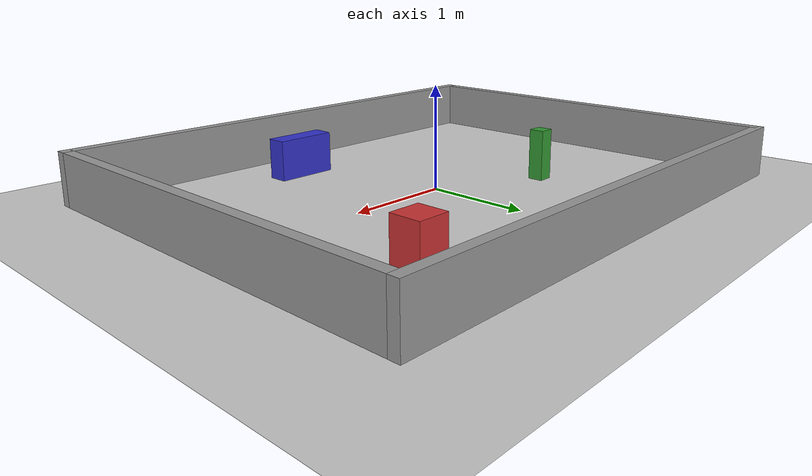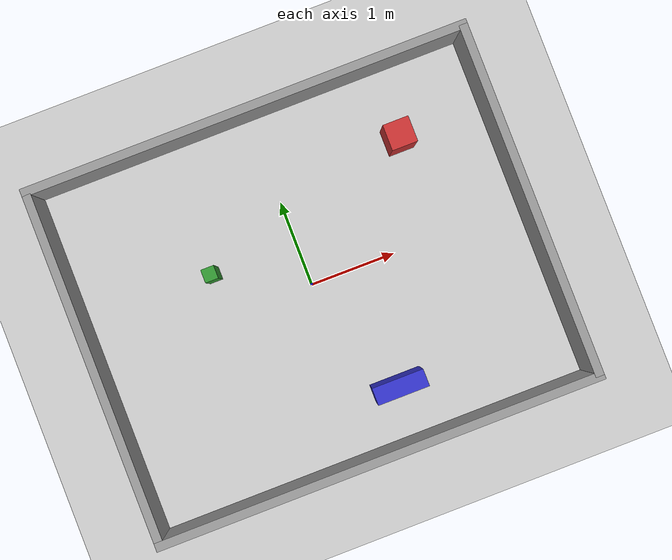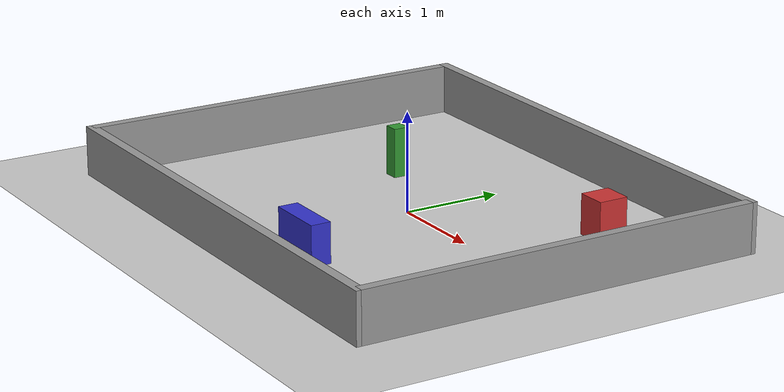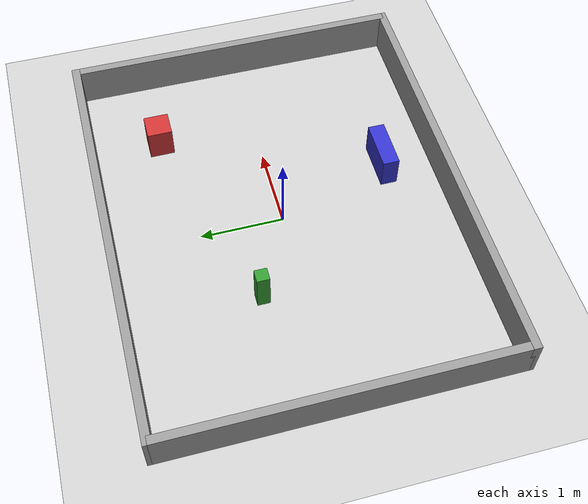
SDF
<?xml version="1.0"?>
<sdf version="1.7">
  <world name="esibot_world">

    <!-- ── Physics ── -->
    <physics name="default_physics" default="true" type="ode">
      <max_step_size>0.001</max_step_size>
      <real_time_factor>1.0</real_time_factor>
      <real_time_update_rate>1000</real_time_update_rate>
    </physics>

    <!-- ── Lighting ── -->
    <light name="sun" type="directional">
      <cast_shadows>true</cast_shadows>
      <pose>0 0 10 0 0 0</pose>
      <diffuse>0.8 0.8 0.8 1</diffuse>
      <specular>0.2 0.2 0.2 1</specular>
      <direction>-0.5 0.1 -0.9</direction>
    </light>

    <!-- ── Ground plane ── -->
    <model name="ground_plane">
      <static>true</static>
      <link name="link">
        <collision name="collision">
          <geometry>
            <plane><normal>0 0 1</normal><size>20 20</size></plane>
          </geometry>
          <surface>
            <friction><ode><mu>1.0</mu><mu2>1.0</mu2></ode></friction>
          </surface>
        </collision>
        <visual name="visual">
          <geometry>
            <plane><normal>0 0 1</normal><size>20 20</size></plane>
          </geometry>
          <material>
            <ambient>0.8 0.8 0.8 1</ambient>
            <diffuse>0.8 0.8 0.8 1</diffuse>
          </material>
        </visual>
      </link>
    </model>

    <!-- North wall (y = +2.0) -->
    <model name="wall_north">
      <static>true</static>
      <pose>0 2.05 0.25 0 0 0</pose>
      <link name="link">
        <collision name="collision">
          <geometry><box><size>5.2 0.1 0.5</size></box></geometry>
        </collision>
        <visual name="visual">
          <geometry><box><size>5.2 0.1 0.5</size></box></geometry>
          <material><ambient>0.6 0.6 0.6 1</ambient></material>
        </visual>
      </link>
    </model>

    <!-- South wall (y = -2.0) -->
    <model name="wall_south">
      <static>true</static>
      <pose>0 -2.05 0.25 0 0 0</pose>
      <link name="link">
        <collision name="collision">
          <geometry><box><size>5.2 0.1 0.5</size></box></geometry>
        </collision>
        <visual name="visual">
          <geometry><box><size>5.2 0.1 0.5</size></box></geometry>
          <material><ambient>0.6 0.6 0.6 1</ambient></material>
        </visual>
      </link>
    </model>

    <!-- East wall (x = +2.5) -->
    <model name="wall_east">
      <static>true</static>
      <pose>2.55 0 0.25 0 0 0</pose>
      <link name="link">
        <collision name="collision">
          <geometry><box><size>0.1 4.1 0.5</size></box></geometry>
        </collision>
        <visual name="visual">
          <geometry><box><size>0.1 4.1 0.5</size></box></geometry>
          <material><ambient>0.6 0.6 0.6 1</ambient></material>
        </visual>
      </link>
    </model>

    <!-- West wall (x = -2.5) -->
    <model name="wall_west">
      <static>true</static>
      <pose>-2.55 0 0.25 0 0 0</pose>
      <link name="link">
        <collision name="collision">
          <geometry><box><size>0.1 4.1 0.5</size></box></geometry>
        </collision>
        <visual name="visual">
          <geometry><box><size>0.1 4.1 0.5</size></box></geometry>
          <material><ambient>0.6 0.6 0.6 1</ambient></material>
        </visual>
      </link>
    </model>

    <!-- Obstacle 1: large box (like a chair) top-right -->
    <model name="obstacle_1">
      <static>true</static>
      <pose>1.5 1.2 0.2 0 0 0</pose>
      <link name="link">
        <collision name="collision">
          <geometry><box><size>0.3 0.3 0.4</size></box></geometry>
        </collision>
        <visual name="visual">
          <geometry><box><size>0.3 0.3 0.4</size></box></geometry>
          <material><ambient>0.8 0.2 0.2 1</ambient></material>
        </visual>
      </link>
    </model>

    <!-- Obstacle 2: narrow pillar (like a table leg) left side -->
    <model name="obstacle_2">
      <static>true</static>
      <pose>-1.0 0.5 0.25 0 0 0</pose>
      <link name="link">
        <collision name="collision">
          <geometry><box><size>0.15 0.15 0.5</size></box></geometry>
        </collision>
        <visual name="visual">
          <geometry><box><size>0.15 0.15 0.5</size></box></geometry>
          <material><ambient>0.2 0.6 0.2 1</ambient></material>
        </visual>
      </link>
    </model>

    <!-- Obstacle 3: wide block (like a shelf) south side -->
    <model name="obstacle_3">
      <static>true</static>
      <pose>0.5 -1.4 0.2 0 0 0</pose>
      <link name="link">
        <collision name="collision">
          <geometry><box><size>0.6 0.2 0.4</size></box></geometry>
        </collision>
        <visual name="visual">
          <geometry><box><size>0.6 0.2 0.4</size></box></geometry>
          <material><ambient>0.2 0.2 0.8 1</ambient></material>
        </visual>
      </link>
    </model>

  </world>
</sdf>
